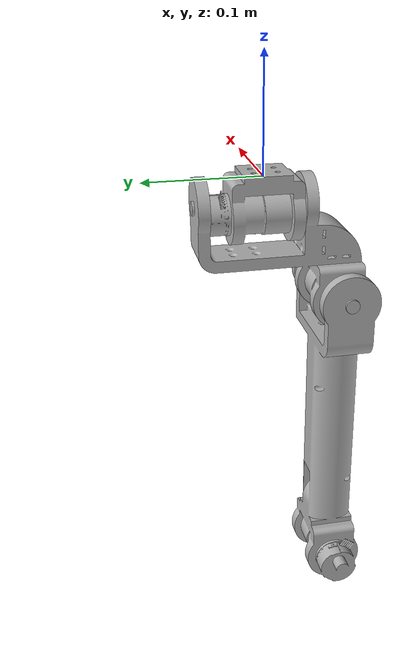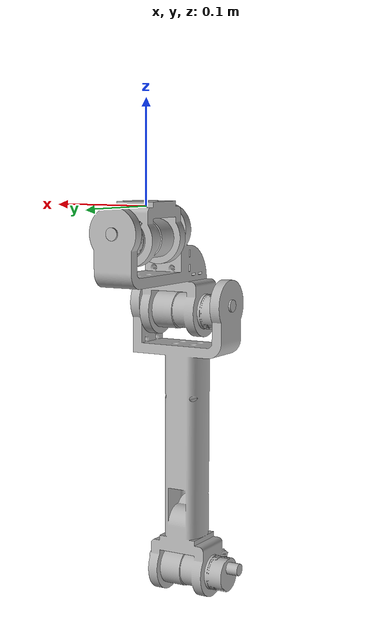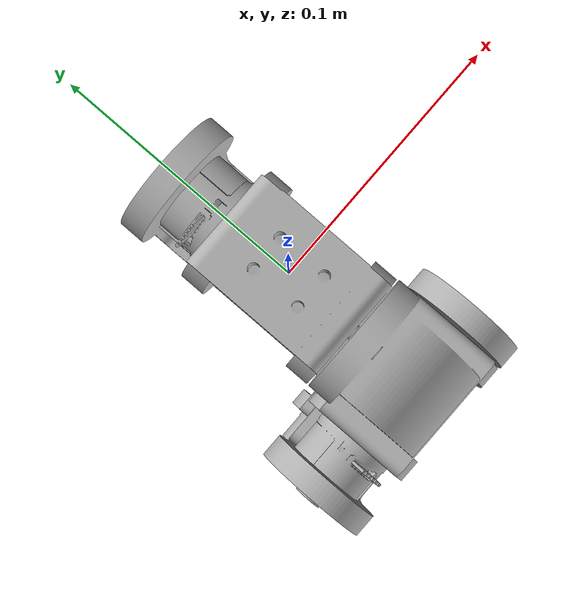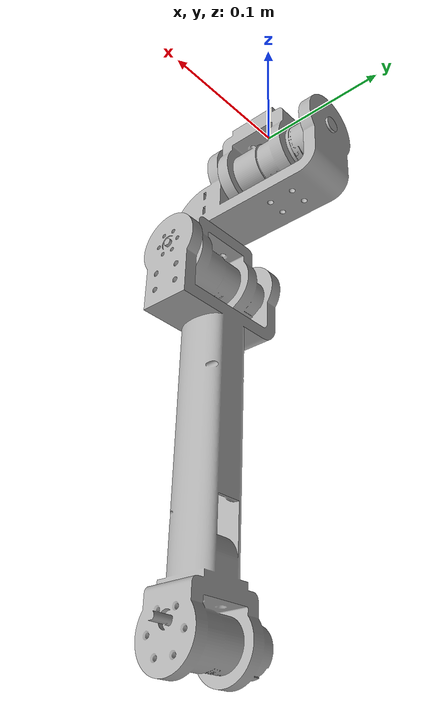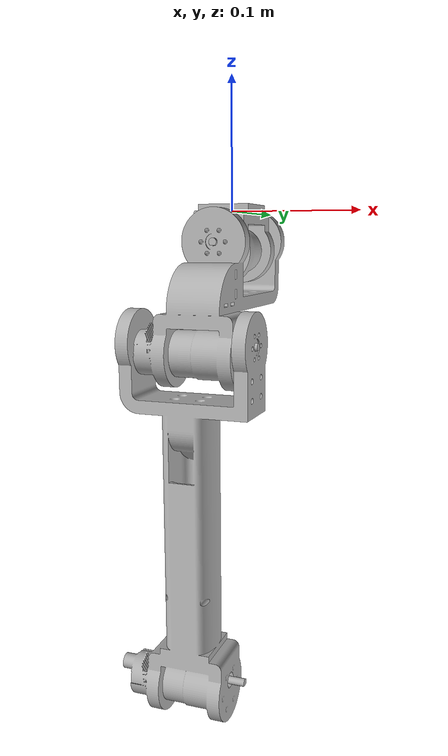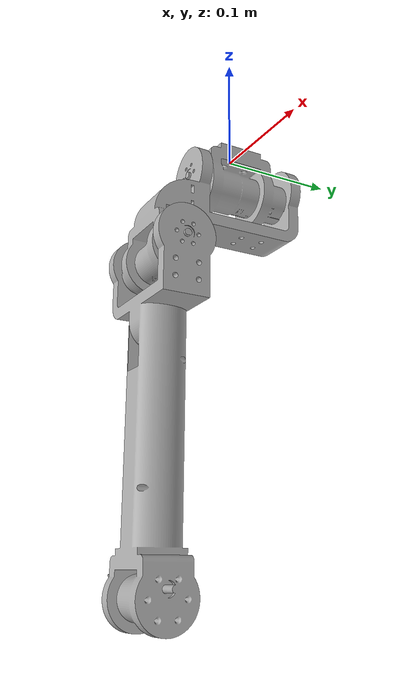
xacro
<?xml version="1.0" ?>
<robot name="test" xmlns:xacro="http://www.ros.org/wiki/xacro">

<xacro:include filename="$(find test_description)/urdf/materials.xacro" />
<xacro:include filename="$(find test_description)/urdf/test.trans" />
<xacro:include filename="$(find test_description)/urdf/test.gazebo" />
<link name="base_link">
  <inertial>
    <origin rpy="0 0 0" xyz="-2.7149053255364976e-05 0.006071611804429397 -0.028193004773101892"/>
    <mass value="0.5130132245051573"/>
    <inertia ixx="0.000232" ixy="0.0" ixz="0.0" iyy="0.000107" iyz="6e-06" izz="0.000214"/>
  </inertial>
  <visual>
    <origin rpy="0 0 0" xyz="0 0 0"/>
    <geometry>
      <mesh filename="package://test_description/meshes/base_link.stl" scale="0.001 0.001 0.001"/>
    </geometry>
    <material name="silver_default"/>
  </visual>
  <collision>
    <origin rpy="0 0 0" xyz="0 0 0"/>
    <geometry>
      <mesh filename="package://test_description/meshes/base_link.stl" scale="0.001 0.001 0.001"/>
    </geometry>
  </collision>
</link>

<link name="link1_1">
  <inertial>
    <origin rpy="0 0 0" xyz="-0.0048088354182080194 -0.021040777808313836 -0.06716959874820433"/>
    <mass value="0.6477259179812457"/>
    <inertia ixx="0.000986" ixy="-3.3e-05" ixz="-4e-05" iyy="0.000609" iyz="-0.000297" izz="0.000762"/>
  </inertial>
  <visual>
    <origin rpy="0 0 0" xyz="0.0 0.03 0.023"/>
    <geometry>
      <mesh filename="package://test_description/meshes/link1_1.stl" scale="0.001 0.001 0.001"/>
    </geometry>
    <material name="silver_default"/>
  </visual>
  <collision>
    <origin rpy="0 0 0" xyz="0.0 0.03 0.023"/>
    <geometry>
      <mesh filename="package://test_description/meshes/link1_1.stl" scale="0.001 0.001 0.001"/>
    </geometry>
  </collision>
</link>

<link name="link2_1">
  <inertial>
    <origin rpy="0 0 0" xyz="-0.06604434136906484 -0.03001640025859674 -0.059051797132805284"/>
    <mass value="0.8261014190531045"/>
    <inertia ixx="0.006903" ixy="-0.0" ixz="-0.000267" iyy="0.007169" iyz="-1.2e-05" izz="0.000441"/>
  </inertial>
  <visual>
    <origin rpy="0 0 0" xyz="-0.052721 0.031421 0.242"/>
    <geometry>
      <mesh filename="package://test_description/meshes/link2_1.stl" scale="0.001 0.001 0.001"/>
    </geometry>
    <material name="silver_default"/>
  </visual>
  <collision>
    <origin rpy="0 0 0" xyz="-0.052721 0.031421 0.242"/>
    <geometry>
      <mesh filename="package://test_description/meshes/link2_1.stl" scale="0.001 0.001 0.001"/>
    </geometry>
  </collision>
</link>

<joint name="Rev1" type="continuous">
  <origin rpy="0 0 0" xyz="0.0 -0.03 -0.023"/>
  <parent link="base_link"/>
  <child link="link1_1"/>
  <axis xyz="0.0 1.0 0.0"/>
</joint>

<joint name="Rev3" type="continuous">
  <origin rpy="0 0 0" xyz="0.052721 -0.001421 -0.219"/>
  <parent link="link1_1"/>
  <child link="link2_1"/>
  <axis xyz="-1.0 -0.0 -0.0"/>
</joint>

</robot>

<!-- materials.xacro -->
<robot name="test" xmlns:xacro="http://www.ros.org/wiki/xacro" >

<material name="silver_default">
  <color rgba="0.700 0.700 0.700 1.000"/>
</material>

</robot>

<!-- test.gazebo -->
<robot name="test" xmlns:xacro="http://www.ros.org/wiki/xacro" >

<xacro:property name="body_color" value="Gazebo/Silver" />

<gazebo>
  <plugin filename="libgazebo_ros_control.so" name="control"/>
</gazebo>
<gazebo reference="base_link">
  <material>${body_color}</material>
  <mu1>0.2</mu1>
  <mu2>0.2</mu2>
  <selfCollide>true</selfCollide>
  <gravity>true</gravity>
</gazebo>

<gazebo reference="link1_1">
  <material>${body_color}</material>
  <mu1>0.2</mu1>
  <mu2>0.2</mu2>
  <selfCollide>true</selfCollide>
</gazebo>

</robot>
